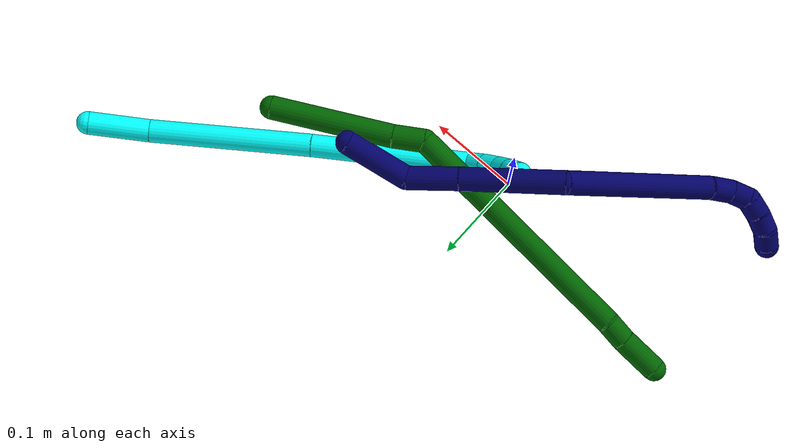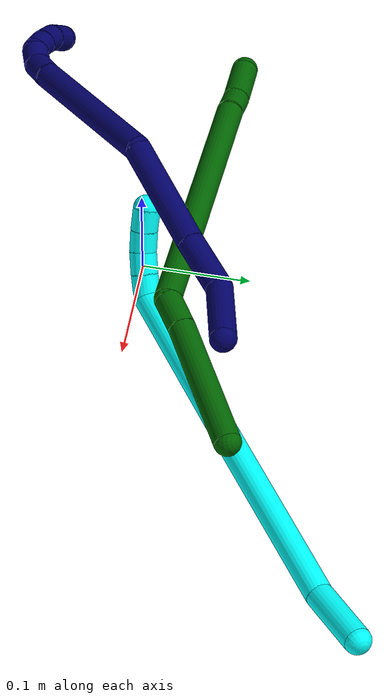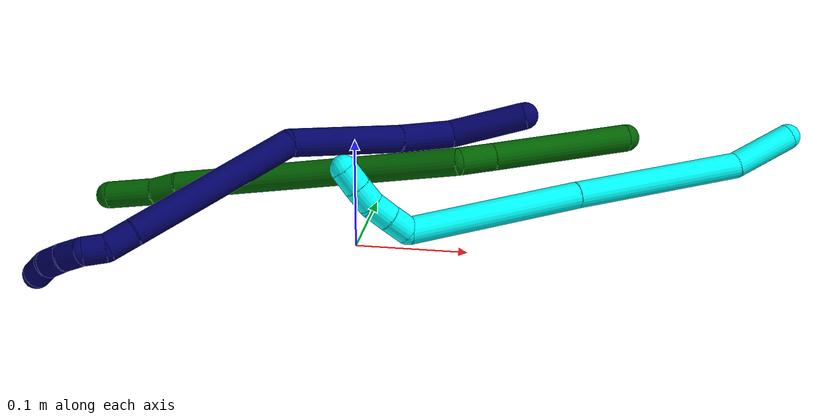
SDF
<sdf version="1.7">
 <world name="default">
  <model name="photoneo_s_sensor">
   <static>1</static>
   <pose>0 0 2 1.57079 1.57079 3.14159</pose>
   <link name="link">
    <inertial><mass>0.1</mass></inertial>
    <sensor name="sensor" type="depth">
     <update_rate>30</update_rate>
     <camera>
      <horizontal_fov>1.22</horizontal_fov>
      <image><width>1920</width><height>1200</height><format>B8G8R8</format></image>
      <clip><near>0.1</near><far>4</far></clip>
      <depth_camera><output>points</output></depth_camera>
     </camera>
     <plugin name="camera_plugin" filename="libgazebo_ros_depth_camera.so">
      <baseline>0.2</baseline>
      <alwaysOn>1</alwaysOn>
      <updateRate>0.0</updateRate>
      <cameraName>camera_ir</cameraName>
      <imageTopicName>/camera/color/image_raw</imageTopicName>
      <cameraInfoTopicName>/camera/color/camera_info</cameraInfoTopicName>
      <depthImageTopicName>/camera/depth/image_raw</depthImageTopicName>
      <depthImageCameraInfoTopicName>/camera/depth/camera_info</depthImageCameraInfoTopicName>
      <pointCloudTopicName>/camera/depth/points</pointCloudTopicName>
      <frameName>fr_optical</frameName>
      <pointCloudCutoff>0.1</pointCloudCutoff>
      <pointCloudCutoffMax>2.0</pointCloudCutoffMax>
      <distortionK1>0</distortionK1>
      <distortionK2>0</distortionK2>
      <distortionK3>0</distortionK3>
      <distortionT1>0</distortionT1>
      <distortionT2>0</distortionT2>
      <CxPrime>0</CxPrime>
      <Cx>0</Cx>
      <Cy>0</Cy>
      <focalLength>0</focalLength>
      <hackBaseline>0</hackBaseline>
     </plugin>
    </sensor>
   </link>
  </model>
  <model name="bin">
   <static>1</static>
   <link name="bottom">
    <collision name="collision-bottom">
     <pose>0 0 -0.01 0 -0 0</pose>
     <geometry><box><size>0.8 0.6 0.02</size></box></geometry>
     <surface>
      <friction><ode><mu>100</mu><mu2>100</mu2></ode></friction>
      <contact><collide_bitmask>65535</collide_bitmask></contact>
     </surface>
    </collision>
   </link>
   <link name="west_wall">
    <collision name="collision-west_wall">
     <pose>-0.41 0 0.1 0 -0 0</pose>
     <geometry><box><size>0.02 0.6 0.2</size></box></geometry>
     <surface>
      <friction><ode><mu>100</mu><mu2>100</mu2></ode></friction>
      <contact><collide_bitmask>65535</collide_bitmask></contact>
     </surface>
    </collision>
   </link>
   <link name="east_wall">
    <collision name="collision-east_wall">
     <pose>0.41 0 0.1 0 -0 0</pose>
     <geometry><box><size>0.02 0.6 0.2</size></box></geometry>
     <surface>
      <friction><ode><mu>100</mu><mu2>100</mu2></ode></friction>
      <contact><collide_bitmask>65535</collide_bitmask></contact>
     </surface>
    </collision>
   </link>
   <link name="south_wall">
    <collision name="collision-south_wall">
     <pose>0 -0.31 0.1 0 -0 0</pose>
     <geometry><box><size>0.8 0.02 0.2</size></box></geometry>
     <surface>
      <friction><ode><mu>100</mu><mu2>100</mu2></ode></friction>
      <contact><collide_bitmask>65535</collide_bitmask></contact>
     </surface>
    </collision>
   </link>
   <link name="north_wall">
    <collision name="collision-north_wall">
     <pose>0 0.31 0.1 0 -0 0</pose>
     <geometry><box><size>0.8 0.02 0.2</size></box></geometry>
     <surface>
      <friction><ode><mu>100</mu><mu2>100</mu2></ode></friction>
      <contact><collide_bitmask>65535</collide_bitmask></contact>
     </surface>
    </collision>
   </link>
  </model>
  <model name="3">
   <static>0</static>
   <link name="3">
    <collision name="collision-cylinder-e_1_1_4">
     <pose>0.001126 -0.000221 -0.032635 3.13482 0.034484 2.75353</pose>
     <geometry><cylinder><radius>0.0125</radius><length>0.06531</length></cylinder></geometry>
     <surface>
      <friction><ode><mu>1.16</mu><mu2>1.16</mu2><slip1>0</slip1><slip2>0</slip2></ode></friction>
      <contact><ode><kp>1e+06</kp><kd>1</kd><max_vel>0</max_vel><min_depth>0.001</min_depth></ode></contact>
     </surface>
    </collision>
    <visual name="visual-cylinder-e_1_1_4">
     <pose>0.001126 -0.000221 -0.032635 3.13482 0.034484 2.75353</pose>
     <geometry><cylinder><radius>0.0125</radius><length>0.06531</length></cylinder></geometry>
     <material><ambient>0.003922 1 0.996078 1</ambient></material>
    </visual>
    <collision name="collision-cylinder-e_2_4_5">
     <pose>-0.01439 -0.017397 -0.151082 2.94652 -0.188007 -1.5337</pose>
     <geometry><cylinder><radius>0.0125</radius><length>0.17808</length></cylinder></geometry>
     <surface>
      <friction><ode><mu>1.16</mu><mu2>1.16</mu2><slip1>0</slip1><slip2>0</slip2></ode></friction>
      <contact><ode><kp>1e+06</kp><kd>1</kd><max_vel>0</max_vel><min_depth>0.001</min_depth></ode></contact>
     </surface>
    </collision>
    <visual name="visual-cylinder-e_2_4_5">
     <pose>-0.01439 -0.017397 -0.151082 2.94652 -0.188007 -1.5337</pose>
     <geometry><cylinder><radius>0.0125</radius><length>0.17808</length></cylinder></geometry>
     <material><ambient>0.003922 1 0.996078 1</ambient></material>
    </visual>
    <collision name="collision-cylinder-e_3_5_6">
     <pose>-0.04649 -0.047829 -0.320648 2.98205 -0.180246 -1.6931</pose>
     <geometry><cylinder><radius>0.0125</radius><length>0.172458</length></cylinder></geometry>
     <surface>
      <friction><ode><mu>1.16</mu><mu2>1.16</mu2><slip1>0</slip1><slip2>0</slip2></ode></friction>
      <contact><ode><kp>1e+06</kp><kd>1</kd><max_vel>0</max_vel><min_depth>0.001</min_depth></ode></contact>
     </surface>
    </collision>
    <visual name="visual-cylinder-e_3_5_6">
     <pose>-0.04649 -0.047829 -0.320648 2.98205 -0.180246 -1.6931</pose>
     <geometry><cylinder><radius>0.0125</radius><length>0.172458</length></cylinder></geometry>
     <material><ambient>0.003922 1 0.996078 1</ambient></material>
    </visual>
    <collision name="collision-cylinder-e_4_6_7">
     <pose>-0.069641 -0.06637 -0.410433 2.44296 -0.77372 -1.68248</pose>
     <geometry><cylinder><radius>0.0125</radius><length>0.022016</length></cylinder></geometry>
     <surface>
      <friction><ode><mu>1.16</mu><mu2>1.16</mu2><slip1>0</slip1><slip2>0</slip2></ode></friction>
      <contact><ode><kp>1e+06</kp><kd>1</kd><max_vel>0</max_vel><min_depth>0.001</min_depth></ode></contact>
     </surface>
    </collision>
    <visual name="visual-cylinder-e_4_6_7">
     <pose>-0.069641 -0.06637 -0.410433 2.44296 -0.77372 -1.68248</pose>
     <geometry><cylinder><radius>0.0125</radius><length>0.022016</length></cylinder></geometry>
     <material><ambient>0.003922 1 0.996078 1</ambient></material>
    </visual>
    <collision name="collision-cylinder-e_5_7_8">
     <pose>-0.08517 -0.075901 -0.421856 2.45 -0.841525 -1.78591</pose>
     <geometry><cylinder><radius>0.0125</radius><length>0.02102</length></cylinder></geometry>
     <surface>
      <friction><ode><mu>1.16</mu><mu2>1.16</mu2><slip1>0</slip1><slip2>0</slip2></ode></friction>
      <contact><ode><kp>1e+06</kp><kd>1</kd><max_vel>0</max_vel><min_depth>0.001</min_depth></ode></contact>
     </surface>
    </collision>
    <visual name="visual-cylinder-e_5_7_8">
     <pose>-0.08517 -0.075901 -0.421856 2.45 -0.841525 -1.78591</pose>
     <geometry><cylinder><radius>0.0125</radius><length>0.02102</length></cylinder></geometry>
     <material><ambient>0.003922 1 0.996078 1</ambient></material>
    </visual>
    <collision name="collision-cylinder-e_6_8_9">
     <pose>-0.101355 -0.085019 -0.430228 2.14024 -0.986315 -1.55285</pose>
     <geometry><cylinder><radius>0.0125</radius><length>0.020018</length></cylinder></geometry>
     <surface>
      <friction><ode><mu>1.16</mu><mu2>1.16</mu2><slip1>0</slip1><slip2>0</slip2></ode></friction>
      <contact><ode><kp>1e+06</kp><kd>1</kd><max_vel>0</max_vel><min_depth>0.001</min_depth></ode></contact>
     </surface>
    </collision>
    <visual name="visual-cylinder-e_6_8_9">
     <pose>-0.101355 -0.085019 -0.430228 2.14024 -0.986315 -1.55285</pose>
     <geometry><cylinder><radius>0.0125</radius><length>0.020018</length></cylinder></geometry>
     <material><ambient>0.003922 1 0.996078 1</ambient></material>
    </visual>
    <collision name="collision-cylinder-e_7_9_2">
     <pose>-0.118826 -0.094314 -0.435749 2.07186 -1.0449 -1.54229</pose>
     <geometry><cylinder><radius>0.0125</radius><length>0.021098</length></cylinder></geometry>
     <surface>
      <friction><ode><mu>1.16</mu><mu2>1.16</mu2><slip1>0</slip1><slip2>0</slip2></ode></friction>
      <contact><ode><kp>1e+06</kp><kd>1</kd><max_vel>0</max_vel><min_depth>0.001</min_depth></ode></contact>
     </surface>
    </collision>
    <visual name="visual-cylinder-e_7_9_2">
     <pose>-0.118826 -0.094314 -0.435749 2.07186 -1.0449 -1.54229</pose>
     <geometry><cylinder><radius>0.0125</radius><length>0.021098</length></cylinder></geometry>
     <material><ambient>0.003922 1 0.996078 1</ambient></material>
    </visual>
    <collision name="collision-sphere-2">
     <pose>-0.127949 -0.098959 -0.438293 0 -0 0</pose>
     <geometry><sphere><radius>0.0125</radius></sphere></geometry>
     <surface>
      <friction><ode><mu>1.16</mu><mu2>1.16</mu2><slip1>0</slip1><slip2>0</slip2></ode></friction>
      <contact><ode><kp>1e+06</kp><kd>1</kd><max_vel>0</max_vel><min_depth>0.001</min_depth></ode></contact>
     </surface>
    </collision>
    <visual name="visual-sphere-2">
     <pose>-0.127949 -0.098959 -0.438293 0 -0 0</pose>
     <geometry><sphere><radius>0.0125</radius></sphere></geometry>
     <material><ambient>0.003922 1 0.996078 1</ambient></material>
    </visual>
    <collision name="collision-sphere-9">
     <pose>-0.109702 -0.08967 -0.433205 0 -0 0</pose>
     <geometry><sphere><radius>0.0125</radius></sphere></geometry>
     <surface>
      <friction><ode><mu>1.16</mu><mu2>1.16</mu2><slip1>0</slip1><slip2>0</slip2></ode></friction>
      <contact><ode><kp>1e+06</kp><kd>1</kd><max_vel>0</max_vel><min_depth>0.001</min_depth></ode></contact>
     </surface>
    </collision>
    <visual name="visual-sphere-9">
     <pose>-0.109702 -0.08967 -0.433205 0 -0 0</pose>
     <geometry><sphere><radius>0.0125</radius></sphere></geometry>
     <material><ambient>0.003922 1 0.996078 1</ambient></material>
    </visual>
    <collision name="collision-sphere-4">
     <pose>0.002252 -0.000442 -0.06527 0 -0 0</pose>
     <geometry><sphere><radius>0.0125</radius></sphere></geometry>
     <surface>
      <friction><ode><mu>1.16</mu><mu2>1.16</mu2><slip1>0</slip1><slip2>0</slip2></ode></friction>
      <contact><ode><kp>1e+06</kp><kd>1</kd><max_vel>0</max_vel><min_depth>0.001</min_depth></ode></contact>
     </surface>
    </collision>
    <visual name="visual-sphere-4">
     <pose>0.002252 -0.000442 -0.06527 0 -0 0</pose>
     <geometry><sphere><radius>0.0125</radius></sphere></geometry>
     <material><ambient>0.003922 1 0.996078 1</ambient></material>
    </visual>
    <collision name="collision-sphere-1">
     <geometry><sphere><radius>0.0125</radius></sphere></geometry>
     <surface>
      <friction><ode><mu>1.16</mu><mu2>1.16</mu2><slip1>0</slip1><slip2>0</slip2></ode></friction>
      <contact><ode><kp>1e+06</kp><kd>1</kd><max_vel>0</max_vel><min_depth>0.001</min_depth></ode></contact>
     </surface>
    </collision>
    <visual name="visual-sphere-1">
     <geometry><sphere><radius>0.0125</radius></sphere></geometry>
     <material><ambient>0.003922 1 0.996078 1</ambient></material>
    </visual>
    <collision name="collision-sphere-8">
     <pose>-0.093007 -0.080367 -0.42725 0 -0 0</pose>
     <geometry><sphere><radius>0.0125</radius></sphere></geometry>
     <surface>
      <friction><ode><mu>1.16</mu><mu2>1.16</mu2><slip1>0</slip1><slip2>0</slip2></ode></friction>
      <contact><ode><kp>1e+06</kp><kd>1</kd><max_vel>0</max_vel><min_depth>0.001</min_depth></ode></contact>
     </surface>
    </collision>
    <visual name="visual-sphere-8">
     <pose>-0.093007 -0.080367 -0.42725 0 -0 0</pose>
     <geometry><sphere><radius>0.0125</radius></sphere></geometry>
     <material><ambient>0.003922 1 0.996078 1</ambient></material>
    </visual>
    <collision name="collision-sphere-5">
     <pose>-0.031032 -0.034352 -0.236893 0 -0 0</pose>
     <geometry><sphere><radius>0.0125</radius></sphere></geometry>
     <surface>
      <friction><ode><mu>1.16</mu><mu2>1.16</mu2><slip1>0</slip1><slip2>0</slip2></ode></friction>
      <contact><ode><kp>1e+06</kp><kd>1</kd><max_vel>0</max_vel><min_depth>0.001</min_depth></ode></contact>
     </surface>
    </collision>
    <visual name="visual-sphere-5">
     <pose>-0.031032 -0.034352 -0.236893 0 -0 0</pose>
     <geometry><sphere><radius>0.0125</radius></sphere></geometry>
     <material><ambient>0.003922 1 0.996078 1</ambient></material>
    </visual>
    <collision name="collision-sphere-6">
     <pose>-0.061948 -0.061306 -0.404403 0 -0 0</pose>
     <geometry><sphere><radius>0.0125</radius></sphere></geometry>
     <surface>
      <friction><ode><mu>1.16</mu><mu2>1.16</mu2><slip1>0</slip1><slip2>0</slip2></ode></friction>
      <contact><ode><kp>1e+06</kp><kd>1</kd><max_vel>0</max_vel><min_depth>0.001</min_depth></ode></contact>
     </surface>
    </collision>
    <visual name="visual-sphere-6">
     <pose>-0.061948 -0.061306 -0.404403 0 -0 0</pose>
     <geometry><sphere><radius>0.0125</radius></sphere></geometry>
     <material><ambient>0.003922 1 0.996078 1</ambient></material>
    </visual>
    <collision name="collision-sphere-7">
     <pose>-0.077333 -0.071435 -0.416462 0 -0 0</pose>
     <geometry><sphere><radius>0.0125</radius></sphere></geometry>
     <surface>
      <friction><ode><mu>1.16</mu><mu2>1.16</mu2><slip1>0</slip1><slip2>0</slip2></ode></friction>
      <contact><ode><kp>1e+06</kp><kd>1</kd><max_vel>0</max_vel><min_depth>0.001</min_depth></ode></contact>
     </surface>
    </collision>
    <visual name="visual-sphere-7">
     <pose>-0.077333 -0.071435 -0.416462 0 -0 0</pose>
     <geometry><sphere><radius>0.0125</radius></sphere></geometry>
     <material><ambient>0.003922 1 0.996078 1</ambient></material>
    </visual>
    <inertial>
     <pose>-0.036732 -0.036219 -0.240087 0 -0 0</pose>
     <mass>0.5</mass>
     <inertia>
      <ixx>-0.000956</ixx>
      <ixy>0</ixy>
      <ixz>0</ixz>
      <iyy>-0.000802</iyy>
      <iyz>0</iyz>
      <izz>0.000299</izz>
     </inertia>
    </inertial>
   </link>
   <pose>0.378762 0.2563 0.029261 -1.23728 0.692377 -0.708831</pose>
  </model>
  <model name="6">
   <static>0</static>
   <link name="6">
    <collision name="collision-cylinder-e_1_1_4">
     <pose>-0.052439 0.020388 0.033007 -0.553326 -0.933837 0.284339</pose>
     <geometry><cylinder><radius>0.0125</radius><length>0.130459</length></cylinder></geometry>
     <surface>
      <friction><ode><mu>1.16</mu><mu2>1.16</mu2><slip1>0</slip1><slip2>0</slip2></ode></friction>
      <contact><ode><kp>1e+06</kp><kd>1</kd><max_vel>0</max_vel><min_depth>0.001</min_depth></ode></contact>
     </surface>
    </collision>
    <visual name="visual-cylinder-e_1_1_4">
     <pose>-0.052439 0.020388 0.033007 -0.553326 -0.933837 0.284339</pose>
     <geometry><cylinder><radius>0.0125</radius><length>0.130459</length></cylinder></geometry>
     <material><ambient>0 0.392157 0.003922 1</ambient></material>
    </visual>
    <collision name="collision-cylinder-e_2_4_5">
     <pose>-0.117613 0.047124 0.075083 -0.610685 -0.855198 0.285333</pose>
     <geometry><cylinder><radius>0.0125</radius><length>0.033751</length></cylinder></geometry>
     <surface>
      <friction><ode><mu>1.16</mu><mu2>1.16</mu2><slip1>0</slip1><slip2>0</slip2></ode></friction>
      <contact><ode><kp>1e+06</kp><kd>1</kd><max_vel>0</max_vel><min_depth>0.001</min_depth></ode></contact>
     </surface>
    </collision>
    <visual name="visual-cylinder-e_2_4_5">
     <pose>-0.117613 0.047124 0.075083 -0.610685 -0.855198 0.285333</pose>
     <geometry><cylinder><radius>0.0125</radius><length>0.033751</length></cylinder></geometry>
     <material><ambient>0 0.392157 0.003922 1</ambient></material>
    </visual>
    <collision name="collision-cylinder-e_3_5_6">
     <pose>-0.261367 0.044657 0.106288 0.379023 -1.39091 -0.317463</pose>
     <geometry><cylinder><radius>0.0125</radius><length>0.266334</length></cylinder></geometry>
     <surface>
      <friction><ode><mu>1.16</mu><mu2>1.16</mu2><slip1>0</slip1><slip2>0</slip2></ode></friction>
      <contact><ode><kp>1e+06</kp><kd>1</kd><max_vel>0</max_vel><min_depth>0.001</min_depth></ode></contact>
     </surface>
    </collision>
    <visual name="visual-cylinder-e_3_5_6">
     <pose>-0.261367 0.044657 0.106288 0.379023 -1.39091 -0.317463</pose>
     <geometry><cylinder><radius>0.0125</radius><length>0.266334</length></cylinder></geometry>
     <material><ambient>0 0.392157 0.003922 1</ambient></material>
    </visual>
    <collision name="collision-cylinder-e_4_6_7">
     <pose>-0.404494 0.032888 0.131229 0.81092 -1.2462 -0.598389</pose>
     <geometry><cylinder><radius>0.0125</radius><length>0.025552</length></cylinder></geometry>
     <surface>
      <friction><ode><mu>1.16</mu><mu2>1.16</mu2><slip1>0</slip1><slip2>0</slip2></ode></friction>
      <contact><ode><kp>1e+06</kp><kd>1</kd><max_vel>0</max_vel><min_depth>0.001</min_depth></ode></contact>
     </surface>
    </collision>
    <visual name="visual-cylinder-e_4_6_7">
     <pose>-0.404494 0.032888 0.131229 0.81092 -1.2462 -0.598389</pose>
     <geometry><cylinder><radius>0.0125</radius><length>0.025552</length></cylinder></geometry>
     <material><ambient>0 0.392157 0.003922 1</ambient></material>
    </visual>
    <collision name="collision-cylinder-e_5_7_2">
     <pose>-0.438206 0.02894 0.137809 0.257692 -1.39209 -0.215674</pose>
     <geometry><cylinder><radius>0.0125</radius><length>0.043904</length></cylinder></geometry>
     <surface>
      <friction><ode><mu>1.16</mu><mu2>1.16</mu2><slip1>0</slip1><slip2>0</slip2></ode></friction>
      <contact><ode><kp>1e+06</kp><kd>1</kd><max_vel>0</max_vel><min_depth>0.001</min_depth></ode></contact>
     </surface>
    </collision>
    <visual name="visual-cylinder-e_5_7_2">
     <pose>-0.438206 0.02894 0.137809 0.257692 -1.39209 -0.215674</pose>
     <geometry><cylinder><radius>0.0125</radius><length>0.043904</length></cylinder></geometry>
     <material><ambient>0 0.392157 0.003922 1</ambient></material>
    </visual>
    <collision name="collision-sphere-2">
     <pose>-0.459808 0.027945 0.141582 0 -0 0</pose>
     <geometry><sphere><radius>0.0125</radius></sphere></geometry>
     <surface>
      <friction><ode><mu>1.16</mu><mu2>1.16</mu2><slip1>0</slip1><slip2>0</slip2></ode></friction>
      <contact><ode><kp>1e+06</kp><kd>1</kd><max_vel>0</max_vel><min_depth>0.001</min_depth></ode></contact>
     </surface>
    </collision>
    <visual name="visual-sphere-2">
     <pose>-0.459808 0.027945 0.141582 0 -0 0</pose>
     <geometry><sphere><radius>0.0125</radius></sphere></geometry>
     <material><ambient>0 0.392157 0.003922 1</ambient></material>
    </visual>
    <collision name="collision-sphere-7">
     <pose>-0.416603 0.029934 0.134036 0 -0 0</pose>
     <geometry><sphere><radius>0.0125</radius></sphere></geometry>
     <surface>
      <friction><ode><mu>1.16</mu><mu2>1.16</mu2><slip1>0</slip1><slip2>0</slip2></ode></friction>
      <contact><ode><kp>1e+06</kp><kd>1</kd><max_vel>0</max_vel><min_depth>0.001</min_depth></ode></contact>
     </surface>
    </collision>
    <visual name="visual-sphere-7">
     <pose>-0.416603 0.029934 0.134036 0 -0 0</pose>
     <geometry><sphere><radius>0.0125</radius></sphere></geometry>
     <material><ambient>0 0.392157 0.003922 1</ambient></material>
    </visual>
    <collision name="collision-sphere-6">
     <pose>-0.392386 0.035842 0.128422 0 -0 0</pose>
     <geometry><sphere><radius>0.0125</radius></sphere></geometry>
     <surface>
      <friction><ode><mu>1.16</mu><mu2>1.16</mu2><slip1>0</slip1><slip2>0</slip2></ode></friction>
      <contact><ode><kp>1e+06</kp><kd>1</kd><max_vel>0</max_vel><min_depth>0.001</min_depth></ode></contact>
     </surface>
    </collision>
    <visual name="visual-sphere-6">
     <pose>-0.392386 0.035842 0.128422 0 -0 0</pose>
     <geometry><sphere><radius>0.0125</radius></sphere></geometry>
     <material><ambient>0 0.392157 0.003922 1</ambient></material>
    </visual>
    <collision name="collision-sphere-5">
     <pose>-0.130349 0.053473 0.084154 0 -0 0</pose>
     <geometry><sphere><radius>0.0125</radius></sphere></geometry>
     <surface>
      <friction><ode><mu>1.16</mu><mu2>1.16</mu2><slip1>0</slip1><slip2>0</slip2></ode></friction>
      <contact><ode><kp>1e+06</kp><kd>1</kd><max_vel>0</max_vel><min_depth>0.001</min_depth></ode></contact>
     </surface>
    </collision>
    <visual name="visual-sphere-5">
     <pose>-0.130349 0.053473 0.084154 0 -0 0</pose>
     <geometry><sphere><radius>0.0125</radius></sphere></geometry>
     <material><ambient>0 0.392157 0.003922 1</ambient></material>
    </visual>
    <collision name="collision-sphere-1">
     <geometry><sphere><radius>0.0125</radius></sphere></geometry>
     <surface>
      <friction><ode><mu>1.16</mu><mu2>1.16</mu2><slip1>0</slip1><slip2>0</slip2></ode></friction>
      <contact><ode><kp>1e+06</kp><kd>1</kd><max_vel>0</max_vel><min_depth>0.001</min_depth></ode></contact>
     </surface>
    </collision>
    <visual name="visual-sphere-1">
     <geometry><sphere><radius>0.0125</radius></sphere></geometry>
     <material><ambient>0 0.392157 0.003922 1</ambient></material>
    </visual>
    <collision name="collision-sphere-4">
     <pose>-0.104877 0.040776 0.066013 0 -0 0</pose>
     <geometry><sphere><radius>0.0125</radius></sphere></geometry>
     <surface>
      <friction><ode><mu>1.16</mu><mu2>1.16</mu2><slip1>0</slip1><slip2>0</slip2></ode></friction>
      <contact><ode><kp>1e+06</kp><kd>1</kd><max_vel>0</max_vel><min_depth>0.001</min_depth></ode></contact>
     </surface>
    </collision>
    <visual name="visual-sphere-4">
     <pose>-0.104877 0.040776 0.066013 0 -0 0</pose>
     <geometry><sphere><radius>0.0125</radius></sphere></geometry>
     <material><ambient>0 0.392157 0.003922 1</ambient></material>
    </visual>
    <inertial>
     <pose>-0.219993 0.03651 0.089104 0 -0 0</pose>
     <mass>0.5</mass>
     <inertia>
      <ixx>0.00029</ixx>
      <ixy>0</ixy>
      <ixz>0</ixz>
      <iyy>0.001717</iyy>
      <iyz>0</iyz>
      <izz>0.001782</izz>
     </inertia>
    </inertial>
   </link>
   <pose>0.229222 0.11907 0.071342 2.11981 -0.021341 -0.147876</pose>
  </model>
  <model name="7">
   <static>0</static>
   <link name="7">
    <collision name="collision-cylinder-e_1_1_4">
     <pose>-0.033826 -0.008381 0.001005 1.45149 -1.32625 -1.21214</pose>
     <geometry><cylinder><radius>0.0125</radius><length>0.069727</length></cylinder></geometry>
     <surface>
      <friction><ode><mu>1.16</mu><mu2>1.16</mu2><slip1>0</slip1><slip2>0</slip2></ode></friction>
      <contact><ode><kp>1e+06</kp><kd>1</kd><max_vel>0</max_vel><min_depth>0.001</min_depth></ode></contact>
     </surface>
    </collision>
    <visual name="visual-cylinder-e_1_1_4">
     <pose>-0.033826 -0.008381 0.001005 1.45149 -1.32625 -1.21214</pose>
     <geometry><cylinder><radius>0.0125</radius><length>0.069727</length></cylinder></geometry>
     <material><ambient>0.003922 0 0.403922 1</ambient></material>
    </visual>
    <collision name="collision-cylinder-e_2_4_5">
     <pose>-0.086406 -0.035776 0.006785 1.32471 -0.763183 -0.606565</pose>
     <geometry><cylinder><radius>0.0125</radius><length>0.05426</length></cylinder></geometry>
     <surface>
      <friction><ode><mu>1.16</mu><mu2>1.16</mu2><slip1>0</slip1><slip2>0</slip2></ode></friction>
      <contact><ode><kp>1e+06</kp><kd>1</kd><max_vel>0</max_vel><min_depth>0.001</min_depth></ode></contact>
     </surface>
    </collision>
    <visual name="visual-cylinder-e_2_4_5">
     <pose>-0.086406 -0.035776 0.006785 1.32471 -0.763183 -0.606565</pose>
     <geometry><cylinder><radius>0.0125</radius><length>0.05426</length></cylinder></geometry>
     <material><ambient>0.003922 0 0.403922 1</ambient></material>
    </visual>
    <collision name="collision-cylinder-e_3_5_6">
     <pose>-0.142706 -0.091904 0.023642 1.2561 -0.766037 -0.569253</pose>
     <geometry><cylinder><radius>0.0125</radius><length>0.108317</length></cylinder></geometry>
     <surface>
      <friction><ode><mu>1.16</mu><mu2>1.16</mu2><slip1>0</slip1><slip2>0</slip2></ode></friction>
      <contact><ode><kp>1e+06</kp><kd>1</kd><max_vel>0</max_vel><min_depth>0.001</min_depth></ode></contact>
     </surface>
    </collision>
    <visual name="visual-cylinder-e_3_5_6">
     <pose>-0.142706 -0.091904 0.023642 1.2561 -0.766037 -0.569253</pose>
     <geometry><cylinder><radius>0.0125</radius><length>0.108317</length></cylinder></geometry>
     <material><ambient>0.003922 0 0.403922 1</ambient></material>
    </visual>
    <collision name="collision-cylinder-e_4_6_7">
     <pose>-0.239485 -0.180842 0.017925 1.90161 -0.82428 -1.09895</pose>
     <geometry><cylinder><radius>0.0125</radius><length>0.161382</length></cylinder></geometry>
     <surface>
      <friction><ode><mu>1.16</mu><mu2>1.16</mu2><slip1>0</slip1><slip2>0</slip2></ode></friction>
      <contact><ode><kp>1e+06</kp><kd>1</kd><max_vel>0</max_vel><min_depth>0.001</min_depth></ode></contact>
     </surface>
    </collision>
    <visual name="visual-cylinder-e_4_6_7">
     <pose>-0.239485 -0.180842 0.017925 1.90161 -0.82428 -1.09895</pose>
     <geometry><cylinder><radius>0.0125</radius><length>0.161382</length></cylinder></geometry>
     <material><ambient>0.003922 0 0.403922 1</ambient></material>
    </visual>
    <collision name="collision-cylinder-e_5_7_8">
     <pose>-0.30914 -0.239658 -0.002861 1.97459 -0.940654 -1.31242</pose>
     <geometry><cylinder><radius>0.0125</radius><length>0.025801</length></cylinder></geometry>
     <surface>
      <friction><ode><mu>1.16</mu><mu2>1.16</mu2><slip1>0</slip1><slip2>0</slip2></ode></friction>
      <contact><ode><kp>1e+06</kp><kd>1</kd><max_vel>0</max_vel><min_depth>0.001</min_depth></ode></contact>
     </surface>
    </collision>
    <visual name="visual-cylinder-e_5_7_8">
     <pose>-0.30914 -0.239658 -0.002861 1.97459 -0.940654 -1.31242</pose>
     <geometry><cylinder><radius>0.0125</radius><length>0.025801</length></cylinder></geometry>
     <material><ambient>0.003922 0 0.403922 1</ambient></material>
    </visual>
    <collision name="collision-cylinder-e_6_8_9">
     <pose>-0.328859 -0.250382 -0.004522 1.22951 -1.16792 -0.87309</pose>
     <geometry><cylinder><radius>0.0125</radius><length>0.02021</length></cylinder></geometry>
     <surface>
      <friction><ode><mu>1.16</mu><mu2>1.16</mu2><slip1>0</slip1><slip2>0</slip2></ode></friction>
      <contact><ode><kp>1e+06</kp><kd>1</kd><max_vel>0</max_vel><min_depth>0.001</min_depth></ode></contact>
     </surface>
    </collision>
    <visual name="visual-cylinder-e_6_8_9">
     <pose>-0.328859 -0.250382 -0.004522 1.22951 -1.16792 -0.87309</pose>
     <geometry><cylinder><radius>0.0125</radius><length>0.02021</length></cylinder></geometry>
     <material><ambient>0.003922 0 0.403922 1</ambient></material>
    </visual>
    <collision name="collision-cylinder-e_7_9_10">
     <pose>-0.348042 -0.252374 -0.003626 -1.81289 -1.39136 1.63484</pose>
     <geometry><cylinder><radius>0.0125</radius><length>0.020096</length></cylinder></geometry>
     <surface>
      <friction><ode><mu>1.16</mu><mu2>1.16</mu2><slip1>0</slip1><slip2>0</slip2></ode></friction>
      <contact><ode><kp>1e+06</kp><kd>1</kd><max_vel>0</max_vel><min_depth>0.001</min_depth></ode></contact>
     </surface>
    </collision>
    <visual name="visual-cylinder-e_7_9_10">
     <pose>-0.348042 -0.252374 -0.003626 -1.81289 -1.39136 1.63484</pose>
     <geometry><cylinder><radius>0.0125</radius><length>0.020096</length></cylinder></geometry>
     <material><ambient>0.003922 0 0.403922 1</ambient></material>
    </visual>
    <collision name="collision-cylinder-e_8_10_11">
     <pose>-0.367504 -0.247675 -0.005229 -1.94858 -1.24995 1.63136</pose>
     <geometry><cylinder><radius>0.0125</radius><length>0.020181</length></cylinder></geometry>
     <surface>
      <friction><ode><mu>1.16</mu><mu2>1.16</mu2><slip1>0</slip1><slip2>0</slip2></ode></friction>
      <contact><ode><kp>1e+06</kp><kd>1</kd><max_vel>0</max_vel><min_depth>0.001</min_depth></ode></contact>
     </surface>
    </collision>
    <visual name="visual-cylinder-e_8_10_11">
     <pose>-0.367504 -0.247675 -0.005229 -1.94858 -1.24995 1.63136</pose>
     <geometry><cylinder><radius>0.0125</radius><length>0.020181</length></cylinder></geometry>
     <material><ambient>0.003922 0 0.403922 1</ambient></material>
    </visual>
    <collision name="collision-cylinder-e_9_11_2">
     <pose>-0.385269 -0.240037 -0.009763 -2.19353 -0.957718 1.58265</pose>
     <geometry><cylinder><radius>0.0125</radius><length>0.020025</length></cylinder></geometry>
     <surface>
      <friction><ode><mu>1.16</mu><mu2>1.16</mu2><slip1>0</slip1><slip2>0</slip2></ode></friction>
      <contact><ode><kp>1e+06</kp><kd>1</kd><max_vel>0</max_vel><min_depth>0.001</min_depth></ode></contact>
     </surface>
    </collision>
    <visual name="visual-cylinder-e_9_11_2">
     <pose>-0.385269 -0.240037 -0.009763 -2.19353 -0.957718 1.58265</pose>
     <geometry><cylinder><radius>0.0125</radius><length>0.020025</length></cylinder></geometry>
     <material><ambient>0.003922 0 0.403922 1</ambient></material>
    </visual>
    <collision name="collision-sphere-2">
     <pose>-0.393458 -0.235358 -0.013123 0 -0 0</pose>
     <geometry><sphere><radius>0.0125</radius></sphere></geometry>
     <surface>
      <friction><ode><mu>1.16</mu><mu2>1.16</mu2><slip1>0</slip1><slip2>0</slip2></ode></friction>
      <contact><ode><kp>1e+06</kp><kd>1</kd><max_vel>0</max_vel><min_depth>0.001</min_depth></ode></contact>
     </surface>
    </collision>
    <visual name="visual-sphere-2">
     <pose>-0.393458 -0.235358 -0.013123 0 -0 0</pose>
     <geometry><sphere><radius>0.0125</radius></sphere></geometry>
     <material><ambient>0.003922 0 0.403922 1</ambient></material>
    </visual>
    <collision name="collision-sphere-11">
     <pose>-0.37708 -0.244717 -0.006403 0 -0 0</pose>
     <geometry><sphere><radius>0.0125</radius></sphere></geometry>
     <surface>
      <friction><ode><mu>1.16</mu><mu2>1.16</mu2><slip1>0</slip1><slip2>0</slip2></ode></friction>
      <contact><ode><kp>1e+06</kp><kd>1</kd><max_vel>0</max_vel><min_depth>0.001</min_depth></ode></contact>
     </surface>
    </collision>
    <visual name="visual-sphere-11">
     <pose>-0.37708 -0.244717 -0.006403 0 -0 0</pose>
     <geometry><sphere><radius>0.0125</radius></sphere></geometry>
     <material><ambient>0.003922 0 0.403922 1</ambient></material>
    </visual>
    <collision name="collision-sphere-10">
     <pose>-0.357929 -0.250633 -0.004055 0 -0 0</pose>
     <geometry><sphere><radius>0.0125</radius></sphere></geometry>
     <surface>
      <friction><ode><mu>1.16</mu><mu2>1.16</mu2><slip1>0</slip1><slip2>0</slip2></ode></friction>
      <contact><ode><kp>1e+06</kp><kd>1</kd><max_vel>0</max_vel><min_depth>0.001</min_depth></ode></contact>
     </surface>
    </collision>
    <visual name="visual-sphere-10">
     <pose>-0.357929 -0.250633 -0.004055 0 -0 0</pose>
     <geometry><sphere><radius>0.0125</radius></sphere></geometry>
     <material><ambient>0.003922 0 0.403922 1</ambient></material>
    </visual>
    <collision name="collision-sphere-9">
     <pose>-0.338155 -0.254115 -0.003196 0 -0 0</pose>
     <geometry><sphere><radius>0.0125</radius></sphere></geometry>
     <surface>
      <friction><ode><mu>1.16</mu><mu2>1.16</mu2><slip1>0</slip1><slip2>0</slip2></ode></friction>
      <contact><ode><kp>1e+06</kp><kd>1</kd><max_vel>0</max_vel><min_depth>0.001</min_depth></ode></contact>
     </surface>
    </collision>
    <visual name="visual-sphere-9">
     <pose>-0.338155 -0.254115 -0.003196 0 -0 0</pose>
     <geometry><sphere><radius>0.0125</radius></sphere></geometry>
     <material><ambient>0.003922 0 0.403922 1</ambient></material>
    </visual>
    <collision name="collision-sphere-4">
     <pose>-0.067653 -0.016762 0.002009 0 -0 0</pose>
     <geometry><sphere><radius>0.0125</radius></sphere></geometry>
     <surface>
      <friction><ode><mu>1.16</mu><mu2>1.16</mu2><slip1>0</slip1><slip2>0</slip2></ode></friction>
      <contact><ode><kp>1e+06</kp><kd>1</kd><max_vel>0</max_vel><min_depth>0.001</min_depth></ode></contact>
     </surface>
    </collision>
    <visual name="visual-sphere-4">
     <pose>-0.067653 -0.016762 0.002009 0 -0 0</pose>
     <geometry><sphere><radius>0.0125</radius></sphere></geometry>
     <material><ambient>0.003922 0 0.403922 1</ambient></material>
    </visual>
    <collision name="collision-sphere-1">
     <geometry><sphere><radius>0.0125</radius></sphere></geometry>
     <surface>
      <friction><ode><mu>1.16</mu><mu2>1.16</mu2><slip1>0</slip1><slip2>0</slip2></ode></friction>
      <contact><ode><kp>1e+06</kp><kd>1</kd><max_vel>0</max_vel><min_depth>0.001</min_depth></ode></contact>
     </surface>
    </collision>
    <visual name="visual-sphere-1">
     <geometry><sphere><radius>0.0125</radius></sphere></geometry>
     <material><ambient>0.003922 0 0.403922 1</ambient></material>
    </visual>
    <collision name="collision-sphere-8">
     <pose>-0.319563 -0.246648 -0.005848 0 -0 0</pose>
     <geometry><sphere><radius>0.0125</radius></sphere></geometry>
     <surface>
      <friction><ode><mu>1.16</mu><mu2>1.16</mu2><slip1>0</slip1><slip2>0</slip2></ode></friction>
      <contact><ode><kp>1e+06</kp><kd>1</kd><max_vel>0</max_vel><min_depth>0.001</min_depth></ode></contact>
     </surface>
    </collision>
    <visual name="visual-sphere-8">
     <pose>-0.319563 -0.246648 -0.005848 0 -0 0</pose>
     <geometry><sphere><radius>0.0125</radius></sphere></geometry>
     <material><ambient>0.003922 0 0.403922 1</ambient></material>
    </visual>
    <collision name="collision-sphere-5">
     <pose>-0.105158 -0.054791 0.011561 0 -0 0</pose>
     <geometry><sphere><radius>0.0125</radius></sphere></geometry>
     <surface>
      <friction><ode><mu>1.16</mu><mu2>1.16</mu2><slip1>0</slip1><slip2>0</slip2></ode></friction>
      <contact><ode><kp>1e+06</kp><kd>1</kd><max_vel>0</max_vel><min_depth>0.001</min_depth></ode></contact>
     </surface>
    </collision>
    <visual name="visual-sphere-5">
     <pose>-0.105158 -0.054791 0.011561 0 -0 0</pose>
     <geometry><sphere><radius>0.0125</radius></sphere></geometry>
     <material><ambient>0.003922 0 0.403922 1</ambient></material>
    </visual>
    <collision name="collision-sphere-6">
     <pose>-0.180253 -0.129017 0.035723 0 -0 0</pose>
     <geometry><sphere><radius>0.0125</radius></sphere></geometry>
     <surface>
      <friction><ode><mu>1.16</mu><mu2>1.16</mu2><slip1>0</slip1><slip2>0</slip2></ode></friction>
      <contact><ode><kp>1e+06</kp><kd>1</kd><max_vel>0</max_vel><min_depth>0.001</min_depth></ode></contact>
     </surface>
    </collision>
    <visual name="visual-sphere-6">
     <pose>-0.180253 -0.129017 0.035723 0 -0 0</pose>
     <geometry><sphere><radius>0.0125</radius></sphere></geometry>
     <material><ambient>0.003922 0 0.403922 1</ambient></material>
    </visual>
    <collision name="collision-sphere-7">
     <pose>-0.298717 -0.232667 0.000126 0 -0 0</pose>
     <geometry><sphere><radius>0.0125</radius></sphere></geometry>
     <surface>
      <friction><ode><mu>1.16</mu><mu2>1.16</mu2><slip1>0</slip1><slip2>0</slip2></ode></friction>
      <contact><ode><kp>1e+06</kp><kd>1</kd><max_vel>0</max_vel><min_depth>0.001</min_depth></ode></contact>
     </surface>
    </collision>
    <visual name="visual-sphere-7">
     <pose>-0.298717 -0.232667 0.000126 0 -0 0</pose>
     <geometry><sphere><radius>0.0125</radius></sphere></geometry>
     <material><ambient>0.003922 0 0.403922 1</ambient></material>
    </visual>
    <inertial>
     <pose>-0.195803 -0.135571 0.010705 0 -0 0</pose>
     <mass>0.5</mass>
     <inertia>
      <ixx>-0.000113</ixx>
      <ixy>0</ixy>
      <ixz>0</ixz>
      <iyy>-1e-05</iyy>
      <iyz>0</iyz>
      <izz>0.000708</izz>
     </inertia>
    </inertial>
   </link>
   <pose>0.138074 0.098946 0.095119 -0.258057 -0.330078 -0.009808</pose>
  </model>
 </world>
</sdf>
